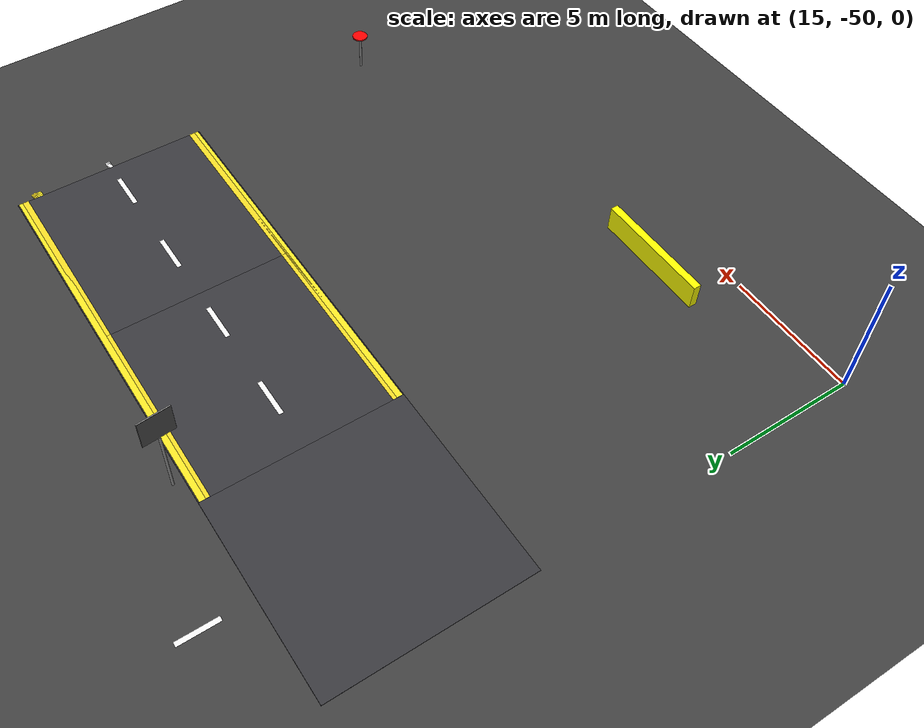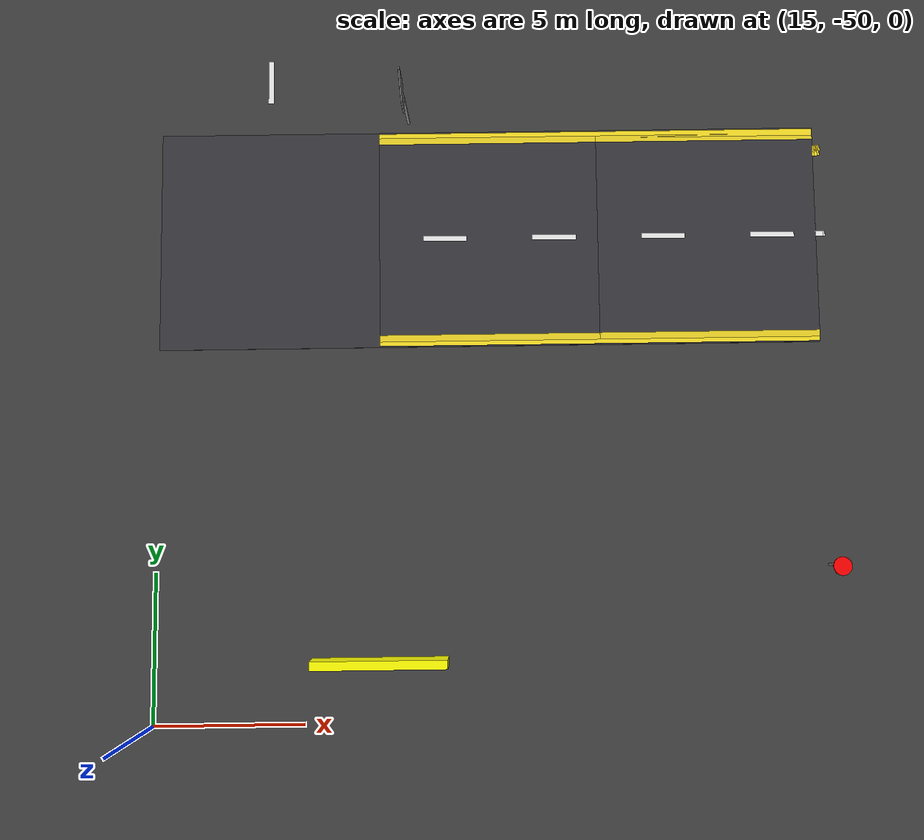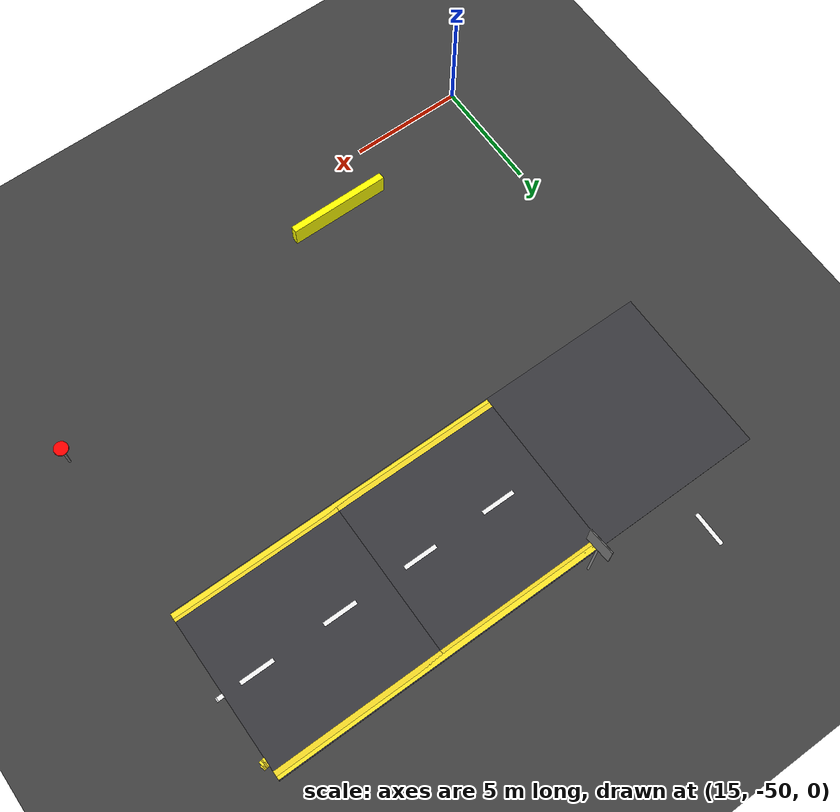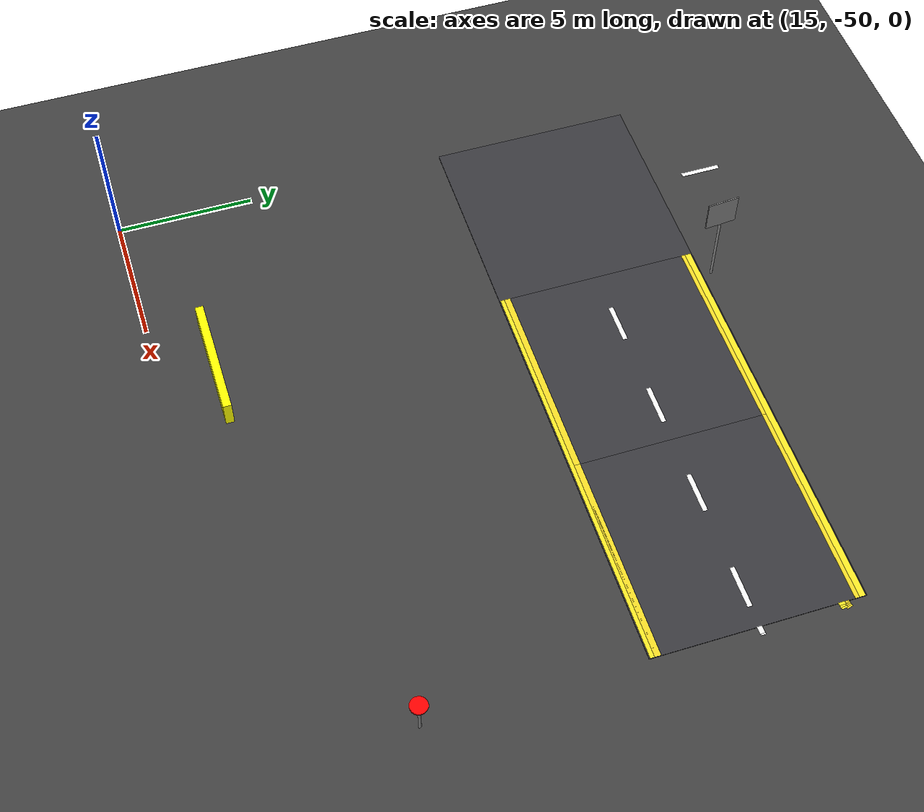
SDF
<sdf version="1.7">
 <world name="compact_city">
  <model name="ground_plane">
   <static>1</static>
   <pose>0 0 0.01 0 -0 0</pose>
   <link name="link">
    <collision name="collision">
     <geometry><plane><normal>0 0 1</normal><size>200 200</size></plane></geometry>
    </collision>
    <visual name="visual">
     <geometry><plane><normal>0 0 1</normal><size>200 200</size></plane></geometry>
     <material>
      <ambient>0.2 0.2 0.2 1</ambient>
      <diffuse>0.25 0.25 0.25 1</diffuse>
      <specular>0.1 0.1 0.1 1</specular>
     </material>
    </visual>
   </link>
  </model>
  <model name="road_tile_76">
   <static>1</static>
   <pose>18.75 -33.75 0.015 0 -0 0</pose>
   <link name="link">
    <collision name="collision"><geometry><box><size>7.5 7.5 0.03</size></box></geometry></collision>
    <visual name="visual">
     <geometry><box><size>7.5 7.5 0.03</size></box></geometry>
     <material>
      <ambient>0.18 0.18 0.2 1</ambient>
      <diffuse>0.22 0.22 0.24 1</diffuse>
      <specular>0.1 0.1 0.1 1</specular>
     </material>
    </visual>
   </link>
  </model>
  <model name="road_tile_77">
   <static>1</static>
   <pose>26.25 -33.75 0.015 0 -0 0</pose>
   <link name="link">
    <collision name="collision"><geometry><box><size>7.5 7.5 0.03</size></box></geometry></collision>
    <visual name="visual">
     <geometry><box><size>7.5 7.5 0.03</size></box></geometry>
     <material>
      <ambient>0.18 0.18 0.2 1</ambient>
      <diffuse>0.22 0.22 0.24 1</diffuse>
      <specular>0.1 0.1 0.1 1</specular>
     </material>
    </visual>
   </link>
  </model>
  <model name="road_tile_78">
   <static>1</static>
   <pose>33.75 -33.75 0.015 0 -0 0</pose>
   <link name="link">
    <collision name="collision"><geometry><box><size>7.5 7.5 0.03</size></box></geometry></collision>
    <visual name="visual">
     <geometry><box><size>7.5 7.5 0.03</size></box></geometry>
     <material>
      <ambient>0.18 0.18 0.2 1</ambient>
      <diffuse>0.22 0.22 0.24 1</diffuse>
      <specular>0.1 0.1 0.1 1</specular>
     </material>
    </visual>
   </link>
  </model>
  <model name="el_229">
   <static>1</static>
   <pose>26.25 -37.2 0.038 0 -0 0</pose>
   <link name="link">
    <visual name="v">
     <geometry><box><size>7.5 0.225 0.002</size></box></geometry>
     <material><ambient>0.9 0.8 0.1 1</ambient><diffuse>0.95 0.85 0.15 1</diffuse></material>
    </visual>
   </link>
  </model>
  <model name="el_230">
   <static>1</static>
   <pose>26.25 -30.3 0.038 0 -0 0</pose>
   <link name="link">
    <visual name="v">
     <geometry><box><size>7.5 0.225 0.002</size></box></geometry>
     <material><ambient>0.9 0.8 0.1 1</ambient><diffuse>0.95 0.85 0.15 1</diffuse></material>
    </visual>
   </link>
  </model>
  <model name="el_237">
   <static>1</static>
   <pose>33.75 -37.2 0.038 0 -0 0</pose>
   <link name="link">
    <visual name="v">
     <geometry><box><size>7.5 0.225 0.002</size></box></geometry>
     <material><ambient>0.9 0.8 0.1 1</ambient><diffuse>0.95 0.85 0.15 1</diffuse></material>
    </visual>
   </link>
  </model>
  <model name="el_238">
   <static>1</static>
   <pose>33.75 -30.3 0.038 0 -0 0</pose>
   <link name="link">
    <visual name="v">
     <geometry><box><size>7.5 0.225 0.002</size></box></geometry>
     <material><ambient>0.9 0.8 0.1 1</ambient><diffuse>0.95 0.85 0.15 1</diffuse></material>
    </visual>
   </link>
  </model>
  <model name="ld_33">
   <static>1</static>
   <pose>18.75 -28.125 0.038 0 -0 1.5708</pose>
   <link name="link">
    <visual name="v">
     <geometry><box><size>1.5 0.18 0.002</size></box></geometry>
     <material><ambient>1 1 1 1</ambient><diffuse>0.95 0.95 0.95 1</diffuse></material>
    </visual>
   </link>
  </model>
  <model name="ld_127">
   <static>1</static>
   <pose>24.75 -33.75 0.038 0 -0 0</pose>
   <link name="link">
    <visual name="v">
     <geometry><box><size>1.5 0.18 0.002</size></box></geometry>
     <material><ambient>1 1 1 1</ambient><diffuse>0.95 0.95 0.95 1</diffuse></material>
    </visual>
   </link>
  </model>
  <model name="ld_128">
   <static>1</static>
   <pose>28.5 -33.75 0.038 0 -0 0</pose>
   <link name="link">
    <visual name="v">
     <geometry><box><size>1.5 0.18 0.002</size></box></geometry>
     <material><ambient>1 1 1 1</ambient><diffuse>0.95 0.95 0.95 1</diffuse></material>
    </visual>
   </link>
  </model>
  <model name="ld_129">
   <static>1</static>
   <pose>32.25 -33.75 0.038 0 -0 0</pose>
   <link name="link">
    <visual name="v">
     <geometry><box><size>1.5 0.18 0.002</size></box></geometry>
     <material><ambient>1 1 1 1</ambient><diffuse>0.95 0.95 0.95 1</diffuse></material>
    </visual>
   </link>
  </model>
  <model name="ld_130">
   <static>1</static>
   <pose>36 -33.75 0.038 0 -0 0</pose>
   <link name="link">
    <visual name="v">
     <geometry><box><size>1.5 0.18 0.002</size></box></geometry>
     <material><ambient>1 1 1 1</ambient><diffuse>0.95 0.95 0.95 1</diffuse></material>
    </visual>
   </link>
  </model>
  <model name="ac_570">
   <static>1</static>
   <pose>37.6227 -33.748 0.038 0 -0 0.032715</pose>
   <link name="link">
    <visual name="v">
     <geometry><box><size>0.260117 0.18 0.002</size></box></geometry>
     <material><ambient>1 1 1 1</ambient><diffuse>0.95 0.95 0.95 1</diffuse></material>
    </visual>
   </link>
  </model>
  <model name="ai_594">
   <static>1</static>
   <pose>37.5246 -30.7495 0.038 0 -0 0.032715</pose>
   <link name="link">
    <visual name="v">
     <geometry><box><size>0.06 0.225 0.002</size></box></geometry>
     <material><ambient>0.9 0.8 0.1 1</ambient><diffuse>0.95 0.85 0.15 1</diffuse></material>
    </visual>
   </link>
  </model>
  <model name="ai_595">
   <static>1</static>
   <pose>37.5735 -30.7464 0.038 0 -0 0.098215</pose>
   <link name="link">
    <visual name="v">
     <geometry><box><size>0.06 0.225 0.002</size></box></geometry>
     <material><ambient>0.9 0.8 0.1 1</ambient><diffuse>0.95 0.85 0.15 1</diffuse></material>
    </visual>
   </link>
  </model>
  <model name="ai_596">
   <static>1</static>
   <pose>37.6221 -30.74 0.038 0 -0 0.163615</pose>
   <link name="link">
    <visual name="v">
     <geometry><box><size>0.06 0.225 0.002</size></box></geometry>
     <material><ambient>0.9 0.8 0.1 1</ambient><diffuse>0.95 0.85 0.15 1</diffuse></material>
    </visual>
   </link>
  </model>
  <model name="ai_597">
   <static>1</static>
   <pose>37.6703 -30.7304 0.038 0 -0 0.229115</pose>
   <link name="link">
    <visual name="v">
     <geometry><box><size>0.06 0.225 0.002</size></box></geometry>
     <material><ambient>0.9 0.8 0.1 1</ambient><diffuse>0.95 0.85 0.15 1</diffuse></material>
    </visual>
   </link>
  </model>
  <model name="ai_598">
   <static>1</static>
   <pose>37.7176 -30.7177 0.038 0 -0 0.294515</pose>
   <link name="link">
    <visual name="v">
     <geometry><box><size>0.06 0.225 0.002</size></box></geometry>
     <material><ambient>0.9 0.8 0.1 1</ambient><diffuse>0.95 0.85 0.15 1</diffuse></material>
    </visual>
   </link>
  </model>
  <model name="yolo_traffic_sign_roadworks_south_entry">
   <static>1</static>
   <pose>23.5297 -29.6441 0 0 0 -1.49233</pose>
   <link name="link">
    <collision name="pole_collision">
     <pose>0 0 1.35 0 -0 0</pose>
     <geometry><cylinder><radius>0.045</radius><length>2.7</length></cylinder></geometry>
    </collision>
    <visual name="pole_visual">
     <pose>0 0 1.35 0 -0 0</pose>
     <geometry><cylinder><radius>0.045</radius><length>2.7</length></cylinder></geometry>
     <material><ambient>0.45 0.45 0.45 1</ambient><diffuse>0.55 0.55 0.55 1</diffuse></material>
    </visual>
    <collision name="panel_collision">
     <pose>0 0 3.275 0 -0 0</pose>
     <geometry><box><size>1.15 0.045 1.15</size></box></geometry>
    </collision>
    <visual name="panel_back_visual">
     <pose>0 0 3.275 0 -0 0</pose>
     <geometry><box><size>1.15 0.045 1.15</size></box></geometry>
     <material><ambient>0.42 0.42 0.42 1</ambient><diffuse>0.5 0.5 0.5 1</diffuse></material>
    </visual>
    <visual name="panel_front_visual">
     <pose>0 -0.026 3.275 0 -0 0</pose>
     <geometry><box><size>1.15 0.006 1.15</size></box></geometry>
     <material>
      <script>
       <uri>file:///home/ranim/autoCar_ws/models/traffic_sign_assets/materials/scripts</uri>
       <uri>file:///home/ranim/autoCar_ws/models/traffic_sign_assets/materials/textures</uri>
       <name>TrafficSigns/WarningRoadworks</name>
      </script>
     </material>
    </visual>
   </link>
  </model>
  <model name="traffic_sign_2">
   <static>1</static>
   <pose>37.5 -45 1.5 0 -0 3.14</pose>
   <link name="link">
    <collision name="collision">
     <geometry><cylinder><radius>0.3</radius><length>0.05</length></cylinder></geometry>
    </collision>
    <visual name="visual">
     <geometry><cylinder><radius>0.3</radius><length>0.05</length></cylinder></geometry>
     <material><ambient>1 0 0 1</ambient><diffuse>1 0 0 1</diffuse></material>
    </visual>
    <collision name="pole_col">
     <pose>0 0 -0.75 0 -0 0</pose>
     <geometry><cylinder><radius>0.05</radius><length>1.5</length></cylinder></geometry>
    </collision>
    <visual name="pole">
     <pose>0 0 -0.75 0 -0 0</pose>
     <geometry><cylinder><radius>0.05</radius><length>1.5</length></cylinder></geometry>
     <material><ambient>0.5 0.5 0.5 1</ambient><diffuse>0.5 0.5 0.5 1</diffuse></material>
    </visual>
   </link>
  </model>
  <model name="barrier_2">
   <static>1</static>
   <pose>22.5 -48 0.5 0 -0 0</pose>
   <link name="link">
    <collision name="collision"><geometry><box><size>4.5 0.3 1</size></box></geometry></collision>
    <visual name="visual">
     <geometry><box><size>4.5 0.3 1</size></box></geometry>
     <material><ambient>1 1 0 1</ambient><diffuse>1 1 0 1</diffuse></material>
    </visual>
   </link>
  </model>
  <model name="edge_h_23">
   <static>1</static>
   <pose>30 -37.35 0.038 0 -0 0</pose>
   <link name="link">
    <visual name="visual">
     <geometry><box><size>15 0.225 0.002</size></box></geometry>
     <material><ambient>0.95 0.85 0.1 1</ambient><diffuse>1 0.9 0.15 1</diffuse></material>
    </visual>
   </link>
  </model>
  <model name="edge_h_24">
   <static>1</static>
   <pose>30 -30.15 0.038 0 -0 0</pose>
   <link name="link">
    <visual name="visual">
     <geometry><box><size>15 0.225 0.002</size></box></geometry>
     <material><ambient>0.95 0.85 0.1 1</ambient><diffuse>1 0.9 0.15 1</diffuse></material>
    </visual>
   </link>
  </model>
  <model name="arc_c_389">
   <static>1</static>
   <pose>37.6472 -33.7441 0.038 0 -0 0.0393</pose>
   <link name="link">
    <visual name="visual">
     <geometry><box><size>0.324449 0.18 0.002</size></box></geometry>
     <material><ambient>1 1 1 1</ambient><diffuse>0.95 0.95 0.95 1</diffuse></material>
    </visual>
   </link>
  </model>
  <model name="arc_in_409">
   <static>1</static>
   <pose>37.5352 -30.8986 0.038 0 -0 0.0393</pose>
   <link name="link">
    <visual name="visual">
     <geometry><box><size>0.100668 0.225 0.002</size></box></geometry>
     <material><ambient>0.95 0.85 0.1 1</ambient><diffuse>1 0.9 0.15 1</diffuse></material>
    </visual>
   </link>
  </model>
  <model name="arc_in_410">
   <static>1</static>
   <pose>37.6058 -30.8931 0.038 0 -0 0.1178</pose>
   <link name="link">
    <visual name="visual">
     <geometry><box><size>0.100668 0.225 0.002</size></box></geometry>
     <material><ambient>0.95 0.85 0.1 1</ambient><diffuse>1 0.9 0.15 1</diffuse></material>
    </visual>
   </link>
  </model>
  <model name="arc_in_411">
   <static>1</static>
   <pose>37.6755 -30.882 0.038 0 -0 0.1963</pose>
   <link name="link">
    <visual name="visual">
     <geometry><box><size>0.100668 0.225 0.002</size></box></geometry>
     <material><ambient>0.95 0.85 0.1 1</ambient><diffuse>1 0.9 0.15 1</diffuse></material>
    </visual>
   </link>
  </model>
 </world>
</sdf>
